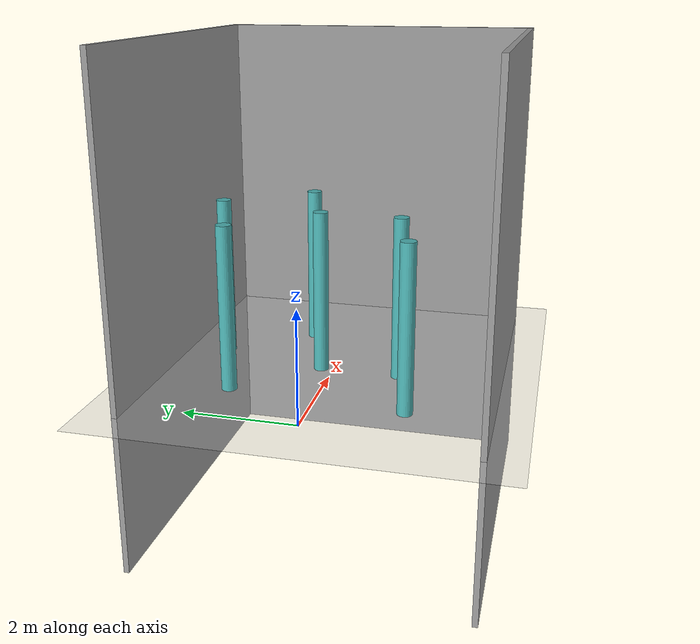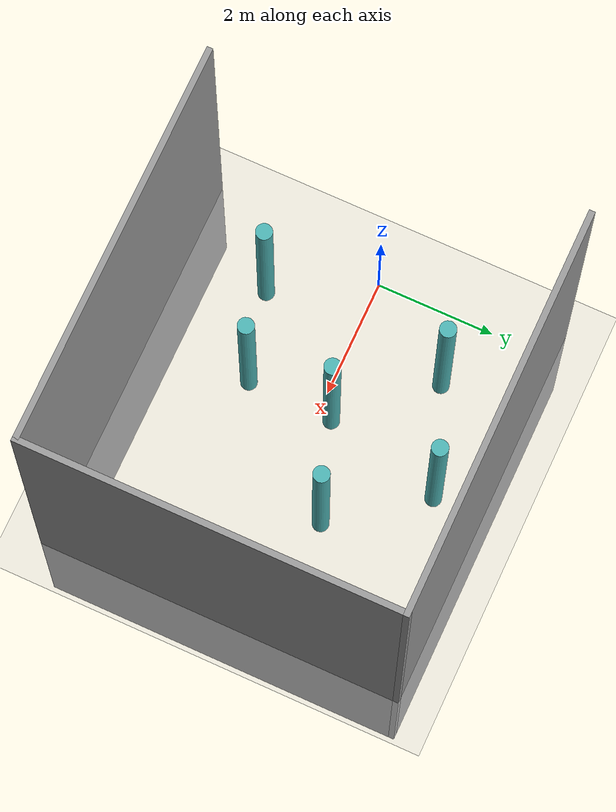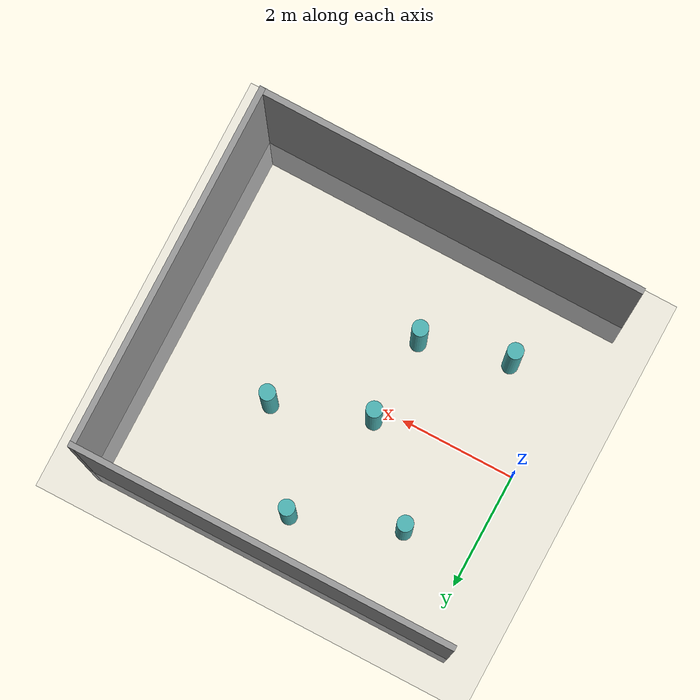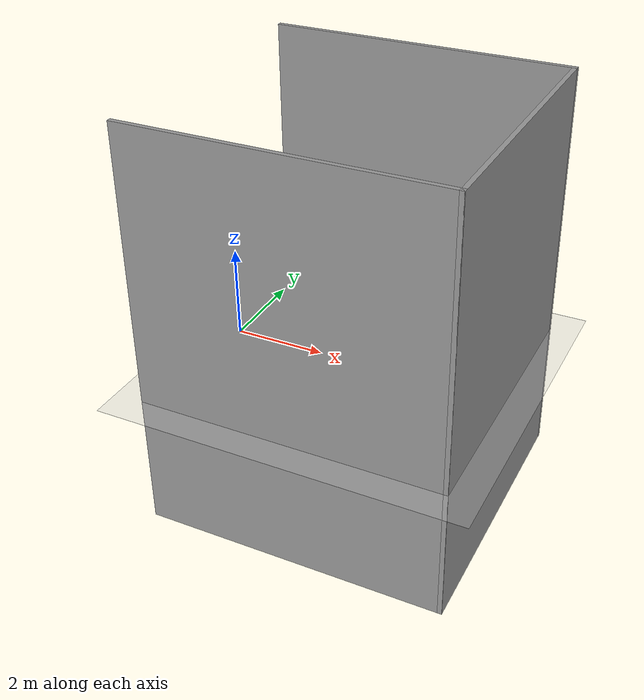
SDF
<sdf version="1.7">
 <world name="default">
  <light name="sun" type="directional">
   <pose>0 0 10 0 -0 0</pose>
   <diffuse>0.8 0.8 0.8 1</diffuse>
   <specular>0.2 0.2 0.2 1</specular>
   <attenuation>
    <range>1000</range>
    <constant>0.9</constant>
    <linear>0.01</linear>
    <quadratic>0.001</quadratic>
   </attenuation>
   <direction>-0.5 0.1 -0.9</direction>
   <spot><inner_angle>0</inner_angle><outer_angle>0</outer_angle><falloff>0</falloff></spot>
  </light>
  <model name="ground_plane">
   <static>1</static>
   <link name="link">
    <collision name="collision">
     <geometry><plane><normal>0 0 1</normal><size>100 100</size></plane></geometry>
     <surface>
      <contact><collide_bitmask>65535</collide_bitmask></contact>
      <friction><ode><mu>100</mu><mu2>50</mu2></ode></friction>
     </surface>
    </collision>
    <visual name="visual">
     <cast_shadows>0</cast_shadows>
     <geometry><plane><normal>0 0 1</normal><size>100 100</size></plane></geometry>
     <material>
      <script><uri>file://media/materials/scripts/gazebo.material</uri><name>Gazebo/Grey</name></script>
     </material>
    </visual>
   </link>
  </model>
  <gravity>0 0 -9.8</gravity>
  <magnetic_field>6e-06 2.3e-05 -4.2e-05</magnetic_field>
  <atmosphere type="adiabatic"/>
  <physics type="ode">
   <max_step_size>0.001</max_step_size>
   <real_time_factor>1</real_time_factor>
   <real_time_update_rate>1000</real_time_update_rate>
  </physics>
  <scene><ambient>0.4 0.4 0.4 1</ambient><background>0.7 0.7 0.7 1</background><shadows>1</shadows></scene>
  <spherical_coordinates>
   <surface_model>EARTH_WGS84</surface_model>
   <latitude_deg>0</latitude_deg>
   <longitude_deg>0</longitude_deg>
   <elevation>0</elevation>
   <heading_deg>0</heading_deg>
  </spherical_coordinates>
  <model name="outer_walls">
   <link name="Wall_4">
    <pose>0 -3.05 0 0 -0 0</pose>
    <inertial>
     <mass>1</mass>
     <inertia><ixx>1</ixx><ixy>0</ixy><ixz>0</ixz><iyy>1</iyy><iyz>0</iyz><izz>1</izz></inertia>
    </inertial>
    <visual name="Wall_4_Visual">
     <pose>0 0 1.5 0 -0 0</pose>
     <geometry><box><size>6.6 0.1 9</size></box></geometry>
     <material>
      <script><uri>file://media/materials/scripts/gazebo.material</uri><name>Gazebo/Grey</name></script>
      <ambient>1 1 1 1</ambient>
      <shader type="pixel"><normal_map>__default__</normal_map></shader>
      <diffuse>0.7 0.7 0.7 1</diffuse>
      <specular>0.01 0.01 0.01 1</specular>
      <emissive>0 0 0 1</emissive>
     </material>
     <meta><layer>0</layer></meta>
    </visual>
    <collision name="Wall_4_Collision">
     <pose>0 0 1.5 0 -0 0</pose>
     <geometry><box><size>6.6 0.1 9</size></box></geometry>
     <surface>
      <friction>
       <ode><mu>1</mu><mu2>1</mu2><fdir1>0 0 0</fdir1><slip1>0</slip1><slip2>0</slip2></ode>
       <torsional>
        <coefficient>1</coefficient>
        <patch_radius>0</patch_radius>
        <surface_radius>0</surface_radius>
        <use_patch_radius>1</use_patch_radius>
        <ode><slip>0</slip></ode>
       </torsional>
      </friction>
      <bounce><restitution_coefficient>0</restitution_coefficient><threshold>1e+06</threshold></bounce>
      <contact>
       <collide_without_contact>0</collide_without_contact>
       <collide_without_contact_bitmask>1</collide_without_contact_bitmask>
       <collide_bitmask>1</collide_bitmask>
       <ode>
        <soft_cfm>0</soft_cfm>
        <soft_erp>0.2</soft_erp>
        <kp>1e+13</kp>
        <kd>1</kd>
        <max_vel>0.01</max_vel>
        <min_depth>0</min_depth>
       </ode>
       <bullet>
        <split_impulse>1</split_impulse>
        <split_impulse_penetration_threshold>-0.01</split_impulse_penetration_threshold>
        <soft_cfm>0</soft_cfm>
        <soft_erp>0.2</soft_erp>
        <kp>1e+13</kp>
        <kd>1</kd>
       </bullet>
      </contact>
     </surface>
    </collision>
   </link>
   <link name="Wall_6">
    <pose>3.25 0 0 0 -0 1.5708</pose>
    <inertial>
     <mass>1</mass>
     <inertia><ixx>1</ixx><ixy>0</ixy><ixz>0</ixz><iyy>1</iyy><iyz>0</iyz><izz>1</izz></inertia>
    </inertial>
    <visual name="Wall_6_Visual">
     <pose>0 0 1.5 0 -0 0</pose>
     <geometry><box><size>6.2 0.1 9</size></box></geometry>
     <material>
      <script><uri>file://media/materials/scripts/gazebo.material</uri><name>Gazebo/Grey</name></script>
      <ambient>1 1 1 1</ambient>
      <shader type="pixel"><normal_map>__default__</normal_map></shader>
      <diffuse>0.7 0.7 0.7 1</diffuse>
      <specular>0.01 0.01 0.01 1</specular>
      <emissive>0 0 0 1</emissive>
     </material>
     <meta><layer>0</layer></meta>
    </visual>
    <collision name="Wall_6_Collision">
     <pose>0 0 1.5 0 -0 0</pose>
     <geometry><box><size>6.2 0.1 9</size></box></geometry>
     <surface>
      <friction>
       <ode><mu>1</mu><mu2>1</mu2><fdir1>0 0 0</fdir1><slip1>0</slip1><slip2>0</slip2></ode>
       <torsional>
        <coefficient>1</coefficient>
        <patch_radius>0</patch_radius>
        <surface_radius>0</surface_radius>
        <use_patch_radius>1</use_patch_radius>
        <ode><slip>0</slip></ode>
       </torsional>
      </friction>
      <bounce><restitution_coefficient>0</restitution_coefficient><threshold>1e+06</threshold></bounce>
      <contact>
       <collide_without_contact>0</collide_without_contact>
       <collide_without_contact_bitmask>1</collide_without_contact_bitmask>
       <collide_bitmask>1</collide_bitmask>
       <ode>
        <soft_cfm>0</soft_cfm>
        <soft_erp>0.2</soft_erp>
        <kp>1e+13</kp>
        <kd>1</kd>
        <max_vel>0.01</max_vel>
        <min_depth>0</min_depth>
       </ode>
       <bullet>
        <split_impulse>1</split_impulse>
        <split_impulse_penetration_threshold>-0.01</split_impulse_penetration_threshold>
        <soft_cfm>0</soft_cfm>
        <soft_erp>0.2</soft_erp>
        <kp>1e+13</kp>
        <kd>1</kd>
       </bullet>
      </contact>
     </surface>
    </collision>
   </link>
   <link name="Wall_8">
    <pose>0 3.05 0 0 -0 3.14159</pose>
    <inertial>
     <mass>1</mass>
     <inertia><ixx>1</ixx><ixy>0</ixy><ixz>0</ixz><iyy>1</iyy><iyz>0</iyz><izz>1</izz></inertia>
    </inertial>
    <visual name="Wall_8_Visual">
     <pose>0 0 1.5 0 -0 0</pose>
     <geometry><box><size>6.6 0.1 9</size></box></geometry>
     <material>
      <script><uri>file://media/materials/scripts/gazebo.material</uri><name>Gazebo/Grey</name></script>
      <ambient>1 1 1 1</ambient>
      <shader type="pixel"><normal_map>__default__</normal_map></shader>
      <diffuse>0.7 0.7 0.7 1</diffuse>
      <specular>0.01 0.01 0.01 1</specular>
      <emissive>0 0 0 1</emissive>
     </material>
     <meta><layer>0</layer></meta>
    </visual>
    <collision name="Wall_8_Collision">
     <pose>0 0 1.5 0 -0 0</pose>
     <geometry><box><size>6.6 0.1 9</size></box></geometry>
     <surface>
      <friction>
       <ode><mu>1</mu><mu2>1</mu2><fdir1>0 0 0</fdir1><slip1>0</slip1><slip2>0</slip2></ode>
       <torsional>
        <coefficient>1</coefficient>
        <patch_radius>0</patch_radius>
        <surface_radius>0</surface_radius>
        <use_patch_radius>1</use_patch_radius>
        <ode><slip>0</slip></ode>
       </torsional>
      </friction>
      <bounce><restitution_coefficient>0</restitution_coefficient><threshold>1e+06</threshold></bounce>
      <contact>
       <collide_without_contact>0</collide_without_contact>
       <collide_without_contact_bitmask>1</collide_without_contact_bitmask>
       <collide_bitmask>1</collide_bitmask>
       <ode>
        <soft_cfm>0</soft_cfm>
        <soft_erp>0.2</soft_erp>
        <kp>1e+13</kp>
        <kd>1</kd>
        <max_vel>0.01</max_vel>
        <min_depth>0</min_depth>
       </ode>
       <bullet>
        <split_impulse>1</split_impulse>
        <split_impulse_penetration_threshold>-0.01</split_impulse_penetration_threshold>
        <soft_cfm>0</soft_cfm>
        <soft_erp>0.2</soft_erp>
        <kp>1e+13</kp>
        <kd>1</kd>
       </bullet>
      </contact>
     </surface>
    </collision>
   </link>
   <static>1</static>
   <pose>2.84181 0 0 0 -0 0</pose>
  </model>
  <model name="cylinder1_clone_clone_clone_clone">
   <link name="link">
    <inertial>
     <mass>1</mass>
     <inertia><ixx>0.145833</ixx><ixy>0</ixy><ixz>0</ixz><iyy>0.145833</iyy><iyz>0</iyz><izz>0.125</izz></inertia>
    </inertial>
    <pose>0.062788 0 -0 0 -0 0</pose>
    <visual name="visual">
     <geometry><cylinder><radius>0.1375</radius><length>3</length></cylinder></geometry>
     <material>
      <script><name>Gazebo/Grey</name><uri>file://media/materials/scripts/gazebo.material</uri></script>
      <shader type="pixel"><normal_map>__default__</normal_map></shader>
      <ambient>0.3 0.7 0.7 1</ambient>
      <diffuse>0.7 0.7 0.7 1</diffuse>
      <specular>0.01 0.01 0.01 1</specular>
      <emissive>0 0 0 1</emissive>
     </material>
    </visual>
    <collision name="collision">
     <geometry><cylinder><radius>0.1375</radius><length>3</length></cylinder></geometry>
     <surface>
      <friction>
       <ode><mu>1</mu><mu2>1</mu2><fdir1>0 0 0</fdir1><slip1>0</slip1><slip2>0</slip2></ode>
       <torsional>
        <coefficient>1</coefficient>
        <patch_radius>0</patch_radius>
        <surface_radius>0</surface_radius>
        <use_patch_radius>1</use_patch_radius>
        <ode><slip>0</slip></ode>
       </torsional>
      </friction>
      <bounce><restitution_coefficient>0</restitution_coefficient><threshold>1e+06</threshold></bounce>
      <contact>
       <collide_without_contact>0</collide_without_contact>
       <collide_without_contact_bitmask>1</collide_without_contact_bitmask>
       <collide_bitmask>1</collide_bitmask>
       <ode>
        <soft_cfm>0</soft_cfm>
        <soft_erp>0.2</soft_erp>
        <kp>1e+13</kp>
        <kd>1</kd>
        <max_vel>0.01</max_vel>
        <min_depth>0</min_depth>
       </ode>
       <bullet>
        <split_impulse>1</split_impulse>
        <split_impulse_penetration_threshold>-0.01</split_impulse_penetration_threshold>
        <soft_cfm>0</soft_cfm>
        <soft_erp>0.2</soft_erp>
        <kp>1e+13</kp>
        <kd>1</kd>
       </bullet>
      </contact>
     </surface>
    </collision>
   </link>
   <static>1</static>
   <pose>1.06713 1.60192 1.49315 -3e-06 -4e-06 -0</pose>
  </model>
  <model name="cylinder1_clone_clone_clone_clone_clone">
   <link name="link">
    <inertial>
     <mass>1</mass>
     <inertia><ixx>0.145833</ixx><ixy>0</ixy><ixz>0</ixz><iyy>0.145833</iyy><iyz>0</iyz><izz>0.125</izz></inertia>
    </inertial>
    <pose>0.062788 0 -0 0 -0 0</pose>
    <visual name="visual">
     <geometry><cylinder><radius>0.1375</radius><length>3</length></cylinder></geometry>
     <material>
      <script><name>Gazebo/Grey</name><uri>file://media/materials/scripts/gazebo.material</uri></script>
      <shader type="pixel"><normal_map>__default__</normal_map></shader>
      <ambient>0.3 0.7 0.7 1</ambient>
      <diffuse>0.7 0.7 0.7 1</diffuse>
      <specular>0.01 0.01 0.01 1</specular>
      <emissive>0 0 0 1</emissive>
     </material>
    </visual>
    <collision name="collision">
     <geometry><cylinder><radius>0.1375</radius><length>3</length></cylinder></geometry>
     <surface>
      <friction>
       <ode><mu>1</mu><mu2>1</mu2><fdir1>0 0 0</fdir1><slip1>0</slip1><slip2>0</slip2></ode>
       <torsional>
        <coefficient>1</coefficient>
        <patch_radius>0</patch_radius>
        <surface_radius>0</surface_radius>
        <use_patch_radius>1</use_patch_radius>
        <ode><slip>0</slip></ode>
       </torsional>
      </friction>
      <bounce><restitution_coefficient>0</restitution_coefficient><threshold>1e+06</threshold></bounce>
      <contact>
       <collide_without_contact>0</collide_without_contact>
       <collide_without_contact_bitmask>1</collide_without_contact_bitmask>
       <collide_bitmask>1</collide_bitmask>
       <ode>
        <soft_cfm>0</soft_cfm>
        <soft_erp>0.2</soft_erp>
        <kp>1e+13</kp>
        <kd>1</kd>
        <max_vel>0.01</max_vel>
        <min_depth>0</min_depth>
       </ode>
       <bullet>
        <split_impulse>1</split_impulse>
        <split_impulse_penetration_threshold>-0.01</split_impulse_penetration_threshold>
        <soft_cfm>0</soft_cfm>
        <soft_erp>0.2</soft_erp>
        <kp>1e+13</kp>
        <kd>1</kd>
       </bullet>
      </contact>
     </surface>
    </collision>
   </link>
   <static>1</static>
   <pose>2.3363 0.24641 1.49316 -3e-06 -4e-06 -0</pose>
  </model>
  <model name="cylinder1_clone_clone_clone_clone_clone_clone">
   <link name="link">
    <inertial>
     <mass>1</mass>
     <inertia><ixx>0.145833</ixx><ixy>0</ixy><ixz>0</ixz><iyy>0.145833</iyy><iyz>0</iyz><izz>0.125</izz></inertia>
    </inertial>
    <pose>0.062788 0 -0 0 -0 0</pose>
    <visual name="visual">
     <geometry><cylinder><radius>0.1375</radius><length>3</length></cylinder></geometry>
     <material>
      <script><name>Gazebo/Grey</name><uri>file://media/materials/scripts/gazebo.material</uri></script>
      <shader type="pixel"><normal_map>__default__</normal_map></shader>
      <ambient>0.3 0.7 0.7 1</ambient>
      <diffuse>0.7 0.7 0.7 1</diffuse>
      <specular>0.01 0.01 0.01 1</specular>
      <emissive>0 0 0 1</emissive>
     </material>
    </visual>
    <collision name="collision">
     <geometry><cylinder><radius>0.1375</radius><length>3</length></cylinder></geometry>
     <surface>
      <friction>
       <ode><mu>1</mu><mu2>1</mu2><fdir1>0 0 0</fdir1><slip1>0</slip1><slip2>0</slip2></ode>
       <torsional>
        <coefficient>1</coefficient>
        <patch_radius>0</patch_radius>
        <surface_radius>0</surface_radius>
        <use_patch_radius>1</use_patch_radius>
        <ode><slip>0</slip></ode>
       </torsional>
      </friction>
      <bounce><restitution_coefficient>0</restitution_coefficient><threshold>1e+06</threshold></bounce>
      <contact>
       <collide_without_contact>0</collide_without_contact>
       <collide_without_contact_bitmask>1</collide_without_contact_bitmask>
       <collide_bitmask>1</collide_bitmask>
       <ode>
        <soft_cfm>0</soft_cfm>
        <soft_erp>0.2</soft_erp>
        <kp>1e+13</kp>
        <kd>1</kd>
        <max_vel>0.01</max_vel>
        <min_depth>0</min_depth>
       </ode>
       <bullet>
        <split_impulse>1</split_impulse>
        <split_impulse_penetration_threshold>-0.01</split_impulse_penetration_threshold>
        <soft_cfm>0</soft_cfm>
        <soft_erp>0.2</soft_erp>
        <kp>1e+13</kp>
        <kd>1</kd>
       </bullet>
      </contact>
     </surface>
    </collision>
   </link>
   <static>1</static>
   <pose>2.29559 -1.22246 1.49316 -3e-06 -4e-06 -0</pose>
  </model>
  <model name="cylinder1_clone_clone_clone_clone_clone_clone_0">
   <link name="link">
    <inertial>
     <mass>1</mass>
     <inertia><ixx>0.145833</ixx><ixy>0</ixy><ixz>0</ixz><iyy>0.145833</iyy><iyz>0</iyz><izz>0.125</izz></inertia>
    </inertial>
    <pose>0.062788 0 -0 0 -0 0</pose>
    <visual name="visual">
     <geometry><cylinder><radius>0.1375</radius><length>3</length></cylinder></geometry>
     <material>
      <script><name>Gazebo/Grey</name><uri>file://media/materials/scripts/gazebo.material</uri></script>
      <shader type="pixel"><normal_map>__default__</normal_map></shader>
      <ambient>0.3 0.7 0.7 1</ambient>
      <diffuse>0.7 0.7 0.7 1</diffuse>
      <specular>0.01 0.01 0.01 1</specular>
      <emissive>0 0 0 1</emissive>
     </material>
    </visual>
    <collision name="collision">
     <geometry><cylinder><radius>0.1375</radius><length>3</length></cylinder></geometry>
     <surface>
      <friction>
       <ode><mu>1</mu><mu2>1</mu2><fdir1>0 0 0</fdir1><slip1>0</slip1><slip2>0</slip2></ode>
       <torsional>
        <coefficient>1</coefficient>
        <patch_radius>0</patch_radius>
        <surface_radius>0</surface_radius>
        <use_patch_radius>1</use_patch_radius>
        <ode><slip>0</slip></ode>
       </torsional>
      </friction>
      <bounce><restitution_coefficient>0</restitution_coefficient><threshold>1e+06</threshold></bounce>
      <contact>
       <collide_without_contact>0</collide_without_contact>
       <collide_without_contact_bitmask>1</collide_without_contact_bitmask>
       <collide_bitmask>1</collide_bitmask>
       <ode>
        <soft_cfm>0</soft_cfm>
        <soft_erp>0.2</soft_erp>
        <kp>1e+13</kp>
        <kd>1</kd>
        <max_vel>0.01</max_vel>
        <min_depth>0</min_depth>
       </ode>
       <bullet>
        <split_impulse>1</split_impulse>
        <split_impulse_penetration_threshold>-0.01</split_impulse_penetration_threshold>
        <soft_cfm>0</soft_cfm>
        <soft_erp>0.2</soft_erp>
        <kp>1e+13</kp>
        <kd>1</kd>
       </bullet>
      </contact>
     </surface>
    </collision>
   </link>
   <static>1</static>
   <pose>0.806314 -1.60357 1.49316 -3e-06 -4e-06 -0</pose>
  </model>
  <model name="cylinder1_clone_clone_clone_clone_clone_clone_1">
   <link name="link">
    <inertial>
     <mass>1</mass>
     <inertia><ixx>0.145833</ixx><ixy>0</ixy><ixz>0</ixz><iyy>0.145833</iyy><iyz>0</iyz><izz>0.125</izz></inertia>
    </inertial>
    <pose>0.062788 0 -0 0 -0 0</pose>
    <visual name="visual">
     <geometry><cylinder><radius>0.1375</radius><length>3</length></cylinder></geometry>
     <material>
      <script><name>Gazebo/Grey</name><uri>file://media/materials/scripts/gazebo.material</uri></script>
      <shader type="pixel"><normal_map>__default__</normal_map></shader>
      <ambient>0.3 0.7 0.7 1</ambient>
      <diffuse>0.7 0.7 0.7 1</diffuse>
      <specular>0.01 0.01 0.01 1</specular>
      <emissive>0 0 0 1</emissive>
     </material>
    </visual>
    <collision name="collision">
     <geometry><cylinder><radius>0.1375</radius><length>3</length></cylinder></geometry>
     <surface>
      <friction>
       <ode><mu>1</mu><mu2>1</mu2><fdir1>0 0 0</fdir1><slip1>0</slip1><slip2>0</slip2></ode>
       <torsional>
        <coefficient>1</coefficient>
        <patch_radius>0</patch_radius>
        <surface_radius>0</surface_radius>
        <use_patch_radius>1</use_patch_radius>
        <ode><slip>0</slip></ode>
       </torsional>
      </friction>
      <bounce><restitution_coefficient>0</restitution_coefficient><threshold>1e+06</threshold></bounce>
      <contact>
       <collide_without_contact>0</collide_without_contact>
       <collide_without_contact_bitmask>1</collide_without_contact_bitmask>
       <collide_bitmask>1</collide_bitmask>
       <ode>
        <soft_cfm>0</soft_cfm>
        <soft_erp>0.2</soft_erp>
        <kp>1e+13</kp>
        <kd>1</kd>
        <max_vel>0.01</max_vel>
        <min_depth>0</min_depth>
       </ode>
       <bullet>
        <split_impulse>1</split_impulse>
        <split_impulse_penetration_threshold>-0.01</split_impulse_penetration_threshold>
        <soft_cfm>0</soft_cfm>
        <soft_erp>0.2</soft_erp>
        <kp>1e+13</kp>
        <kd>1</kd>
       </bullet>
      </contact>
     </surface>
    </collision>
   </link>
   <static>1</static>
   <pose>2.8295 2.2508 1.49315 -3e-06 -4e-06 -0</pose>
  </model>
  <model name="cylinder1_clone_clone_clone_clone_clone_clone_1_clone">
   <link name="link">
    <inertial>
     <mass>1</mass>
     <inertia><ixx>0.145833</ixx><ixy>0</ixy><ixz>0</ixz><iyy>0.145833</iyy><iyz>0</iyz><izz>0.125</izz></inertia>
    </inertial>
    <pose>0.062788 0 -0 0 -0 0</pose>
    <visual name="visual">
     <geometry><cylinder><radius>0.1375</radius><length>3</length></cylinder></geometry>
     <material>
      <script><name>Gazebo/Grey</name><uri>file://media/materials/scripts/gazebo.material</uri></script>
      <shader type="pixel"><normal_map>__default__</normal_map></shader>
      <ambient>0.3 0.7 0.7 1</ambient>
      <diffuse>0.7 0.7 0.7 1</diffuse>
      <specular>0.01 0.01 0.01 1</specular>
      <emissive>0 0 0 1</emissive>
     </material>
    </visual>
    <collision name="collision">
     <geometry><cylinder><radius>0.1375</radius><length>3</length></cylinder></geometry>
     <surface>
      <friction>
       <ode><mu>1</mu><mu2>1</mu2><fdir1>0 0 0</fdir1><slip1>0</slip1><slip2>0</slip2></ode>
       <torsional>
        <coefficient>1</coefficient>
        <patch_radius>0</patch_radius>
        <surface_radius>0</surface_radius>
        <use_patch_radius>1</use_patch_radius>
        <ode><slip>0</slip></ode>
       </torsional>
      </friction>
      <bounce><restitution_coefficient>0</restitution_coefficient><threshold>1e+06</threshold></bounce>
      <contact>
       <collide_without_contact>0</collide_without_contact>
       <collide_without_contact_bitmask>1</collide_without_contact_bitmask>
       <collide_bitmask>1</collide_bitmask>
       <ode>
        <soft_cfm>0</soft_cfm>
        <soft_erp>0.2</soft_erp>
        <kp>1e+13</kp>
        <kd>1</kd>
        <max_vel>0.01</max_vel>
        <min_depth>0</min_depth>
       </ode>
       <bullet>
        <split_impulse>1</split_impulse>
        <split_impulse_penetration_threshold>-0.01</split_impulse_penetration_threshold>
        <soft_cfm>0</soft_cfm>
        <soft_erp>0.2</soft_erp>
        <kp>1e+13</kp>
        <kd>1</kd>
       </bullet>
      </contact>
     </surface>
    </collision>
   </link>
   <static>1</static>
   <pose>3.94679 0.794248 1.49316 -3e-06 -4e-06 -0</pose>
  </model>
 </world>
</sdf>
